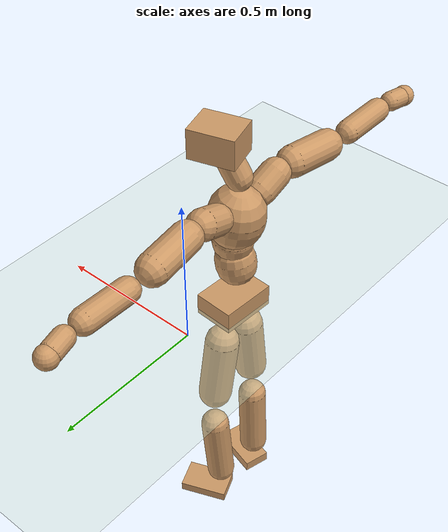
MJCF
<mujoco model="humanoid">
  <compiler coordinate="local" angle="radian"/>
  <default>
    <joint damping="0.0" armature="0.01" stiffness="0.0" limited="true"/>
    <geom conaffinity="1" condim="3" contype="7" margin="0.001" rgba="0.8 0.6 .4 1"/>
  </default>
  <asset>
    <texture type="skybox" builtin="gradient" rgb1=".4 .5 .6" rgb2="0 0 0" width="100" height="100"/>
    <texture builtin="flat" height="1278" mark="cross" markrgb="1 1 1" name="texgeom" random="0.01" rgb1="0.8 0.6 0.4" rgb2="0.8 0.6 0.4" type="cube" width="127"/>
    <texture builtin="checker" height="100" name="texplane" rgb1="0 0 0" rgb2="0.8 0.8 0.8" type="2d" width="100"/>
    <material name="MatPlane" reflectance="0.5" shininess="1" specular="1" texrepeat="60 60" texture="texplane"/>
    <material name="geom" texture="texgeom" texuniform="true"/>
  </asset>
  <worldbody>
    <light cutoff="100" diffuse="1 1 1" dir="-0 0 -1.3" directional="true" exponent="1" pos="0 0 1.3" specular=".1 .1 .1"/>
    <geom conaffinity="1" condim="3" name="floor" pos="0 0 0" rgba="0.8 0.9 0.8 1" size="100 100 .2" type="plane" material="MatPlane"/>
    <body name="Pelvis" pos="-0.0039 -0.2009 0.0273">
      <freejoint name="Pelvis"/>
      <geom type="box" contype="1" conaffinity="1" density="500" pos="-0.0115 0.0006 -0.0075" size="0.0682 0.0932 0.0385" quat="0.9996 0.0000 0.0000 -0.0267" name="Pelvis"/>
      <body name="L_Hip" pos="-0.018 0.0506 -0.0721">
        <joint name="L_Hip_x" type="hinge" pos="0 0 0" axis="1 0 0" stiffness="800" damping="80" armature="0.02" range="-180.0000 180.0000"/>
        <joint name="L_Hip_y" type="hinge" pos="0 0 0" axis="0 1 0" stiffness="800" damping="80" armature="0.02" range="-180.0000 180.0000"/>
        <joint name="L_Hip_z" type="hinge" pos="0 0 0" axis="0 0 1" stiffness="800" damping="80" armature="0.02" range="-180.0000 180.0000"/>
        <geom type="capsule" contype="1" conaffinity="1" density="500" fromto="0.0031 0.0098 -0.0768 0.0123 0.0393 -0.3072" size="0.0565" name="L_Hip"/>
        <body name="L_Knee" pos="0.0154 0.0491 -0.384">
          <joint name="L_Knee_x" type="hinge" pos="0 0 0" axis="1 0 0" stiffness="800" damping="80" armature="0.02" range="-180.0000 180.0000"/>
          <joint name="L_Knee_y" type="hinge" pos="0 0 0" axis="0 1 0" stiffness="800" damping="80" armature="0.02" range="-180.0000 180.0000"/>
          <joint name="L_Knee_z" type="hinge" pos="0 0 0" axis="0 0 1" stiffness="800" damping="80" armature="0.02" range="-180.0000 180.0000"/>
          <geom type="capsule" contype="1" conaffinity="1" density="500" fromto="-0.0059 -0.0023 -0.0831 -0.0237 -0.0093 -0.3323" size="0.0489" name="L_Knee"/>
          <body name="L_Ankle" pos="-0.0297 -0.0116 -0.4153">
            <joint name="L_Ankle_x" type="hinge" pos="0 0 0" axis="1 0 0" stiffness="800" damping="80" armature="0.02" range="-180.0000 180.0000"/>
            <joint name="L_Ankle_y" type="hinge" pos="0 0 0" axis="0 1 0" stiffness="800" damping="80" armature="0.02" range="-180.0000 180.0000"/>
            <joint name="L_Ankle_z" type="hinge" pos="0 0 0" axis="0 0 1" stiffness="800" damping="80" armature="0.02" range="-180.0000 180.0000"/>
            <geom type="box" contype="1" conaffinity="1" density="500" pos="0.0569 0.0234 -0.0291" size="0.0839 0.0521 0.018" quat="0.9811 0.0000 0.0000 0.1935" name="L_Ankle"/>
            <body name="L_Toe" pos="0.1139 0.0467 -0.0582">
              <joint name="L_Toe_x" type="hinge" pos="0 0 0" axis="1 0 0" stiffness="500" damping="50" armature="0.02" range="-180.0000 180.0000"/>
              <joint name="L_Toe_y" type="hinge" pos="0 0 0" axis="0 1 0" stiffness="500" damping="50" armature="0.02" range="-180.0000 180.0000"/>
              <joint name="L_Toe_z" type="hinge" pos="0 0 0" axis="0 0 1" stiffness="500" damping="50" armature="0.02" range="-180.0000 180.0000"/>
              <geom type="box" contype="1" conaffinity="1" density="500" pos="0.0000 0.0000 0.0296" size="0.001 0.0025 0.0009" quat="0.9802 0.0000 0.0000 0.1978" name="L_Toe"/>
            </body>
          </body>
        </body>
      </body>
      <body name="R_Hip" pos="-0.0151 -0.051 -0.0793">
        <joint name="R_Hip_x" type="hinge" pos="0 0 0" axis="1 0 0" stiffness="800" damping="80" armature="0.02" range="-180.0000 180.0000"/>
        <joint name="R_Hip_y" type="hinge" pos="0 0 0" axis="0 1 0" stiffness="800" damping="80" armature="0.02" range="-180.0000 180.0000"/>
        <joint name="R_Hip_z" type="hinge" pos="0 0 0" axis="0 0 1" stiffness="800" damping="80" armature="0.02" range="-180.0000 180.0000"/>
        <geom type="capsule" contype="1" conaffinity="1" density="500" fromto="0.0002 -0.0090 -0.0750 0.0009 -0.0360 -0.3000" size="0.0555" name="R_Hip"/>
        <body name="R_Knee" pos="0.0012 -0.045 -0.3751">
          <joint name="R_Knee_x" type="hinge" pos="0 0 0" axis="1 0 0" stiffness="800" damping="80" armature="0.02" range="-180.0000 180.0000"/>
          <joint name="R_Knee_y" type="hinge" pos="0 0 0" axis="0 1 0" stiffness="800" damping="80" armature="0.02" range="-180.0000 180.0000"/>
          <joint name="R_Knee_z" type="hinge" pos="0 0 0" axis="0 0 1" stiffness="800" damping="80" armature="0.02" range="-180.0000 180.0000"/>
          <geom type="capsule" contype="1" conaffinity="1" density="500" fromto="-0.0056 0.0033 -0.0811 -0.0225 0.0130 -0.3245" size="0.0495" name="R_Knee"/>
          <body name="R_Ankle" pos="-0.0281 0.0163 -0.4057">
            <joint name="R_Ankle_x" type="hinge" pos="0 0 0" axis="1 0 0" stiffness="800" damping="80" armature="0.02" range="-180.0000 180.0000"/>
            <joint name="R_Ankle_y" type="hinge" pos="0 0 0" axis="0 1 0" stiffness="800" damping="80" armature="0.02" range="-180.0000 180.0000"/>
            <joint name="R_Ankle_z" type="hinge" pos="0 0 0" axis="0 0 1" stiffness="800" damping="80" armature="0.02" range="-180.0000 180.0000"/>
            <geom type="box" contype="1" conaffinity="1" density="500" pos="0.0610 -0.0163 -0.0295" size="0.0865 0.0467 0.0197" quat="0.9915 0.0000 0.0000 -0.1301" name="R_Ankle"/>
            <body name="R_Toe" pos="0.122 -0.0326 -0.0591">
              <joint name="R_Toe_x" type="hinge" pos="0 0 0" axis="1 0 0" stiffness="500" damping="50" armature="0.02" range="-180.0000 180.0000"/>
              <joint name="R_Toe_y" type="hinge" pos="0 0 0" axis="0 1 0" stiffness="500" damping="50" armature="0.02" range="-180.0000 180.0000"/>
              <joint name="R_Toe_z" type="hinge" pos="0 0 0" axis="0 0 1" stiffness="500" damping="50" armature="0.02" range="-180.0000 180.0000"/>
              <geom type="box" contype="1" conaffinity="1" density="500" pos="0.0000 0.0000 0.0299" size="0.0009 0.0023 0.001" quat="0.9927 0.0000 0.0000 -0.1206" name="R_Toe"/>
            </body>
          </body>
        </body>
      </body>
      <body name="Torso" pos="-0.0357 0.0041 0.1065">
        <joint name="Torso_x" type="hinge" pos="0 0 0" axis="1 0 0" stiffness="1000" damping="100" armature="0.02" range="-180.0000 180.0000"/>
        <joint name="Torso_y" type="hinge" pos="0 0 0" axis="0 1 0" stiffness="1000" damping="100" armature="0.02" range="-180.0000 180.0000"/>
        <joint name="Torso_z" type="hinge" pos="0 0 0" axis="0 0 1" stiffness="1000" damping="100" armature="0.02" range="-180.0000 180.0000"/>
        <geom type="capsule" contype="1" conaffinity="1" density="500" fromto="0.0120 0.0020 0.0718 0.0080 0.0013 0.0479" size="0.0652" name="Torso"/>
        <body name="Spine" pos="0.0199 0.0033 0.1197">
          <joint name="Spine_x" type="hinge" pos="0 0 0" axis="1 0 0" stiffness="1000" damping="100" armature="0.02" range="-180.0000 180.0000"/>
          <joint name="Spine_y" type="hinge" pos="0 0 0" axis="0 1 0" stiffness="1000" damping="100" armature="0.02" range="-180.0000 180.0000"/>
          <joint name="Spine_z" type="hinge" pos="0 0 0" axis="0 0 1" stiffness="1000" damping="100" armature="0.02" range="-180.0000 180.0000"/>
          <geom type="capsule" contype="1" conaffinity="1" density="500" fromto="-0.0003 -0.0004 0.0289 -0.0002 -0.0003 0.0193" size="0.0657" name="Spine"/>
          <body name="Chest" pos="-0.0005 -0.0006 0.0482">
            <joint name="Chest_x" type="hinge" pos="0 0 0" axis="1 0 0" stiffness="1000" damping="100" armature="0.02" range="-180.0000 180.0000"/>
            <joint name="Chest_y" type="hinge" pos="0 0 0" axis="0 1 0" stiffness="1000" damping="100" armature="0.02" range="-180.0000 180.0000"/>
            <joint name="Chest_z" type="hinge" pos="0 0 0" axis="0 0 1" stiffness="1000" damping="100" armature="0.02" range="-180.0000 180.0000"/>
            <geom type="capsule" contype="1" conaffinity="1" density="500" fromto="-0.0111 -0.0045 0.0777 -0.0074 -0.0030 0.0518" size="0.0902" name="Chest"/>
            <body name="Neck" pos="-0.0224 -0.0122 0.1868">
              <joint name="Neck_x" type="hinge" pos="0 0 0" axis="1 0 0" stiffness="500" damping="50" armature="0.02" range="-180.0000 180.0000"/>
              <joint name="Neck_y" type="hinge" pos="0 0 0" axis="0 1 0" stiffness="500" damping="50" armature="0.02" range="-180.0000 180.0000"/>
              <joint name="Neck_z" type="hinge" pos="0 0 0" axis="0 0 1" stiffness="500" damping="50" armature="0.02" range="-180.0000 180.0000"/>
              <geom type="capsule" contype="1" conaffinity="1" density="500" fromto="0.0089 0.0024 0.0167 0.0358 0.0094 0.0669" size="0.0416" name="Neck"/>
              <body name="Head" pos="0.0447 0.0118 0.0837">
                <joint name="Head_x" type="hinge" pos="0 0 0" axis="1 0 0" stiffness="500" damping="50" armature="0.02" range="-180.0000 180.0000"/>
                <joint name="Head_y" type="hinge" pos="0 0 0" axis="0 1 0" stiffness="500" damping="50" armature="0.02" range="-180.0000 180.0000"/>
                <joint name="Head_z" type="hinge" pos="0 0 0" axis="0 0 1" stiffness="500" damping="50" armature="0.02" range="-180.0000 180.0000"/>
                <geom type="box" contype="1" conaffinity="1" density="500" pos="0.0234 0.0069 0.0428" size="0.0744 0.0585 0.0489" quat="0.9897 0.0000 0.0000 0.1428" name="Head"/>
              </body>
            </body>
            <body name="L_Thorax" pos="-0.0136 0.067 0.1021">
              <joint name="L_Thorax_x" type="hinge" pos="0 0 0" axis="1 0 0" stiffness="500" damping="50" armature="0.02" range="-180.0000 180.0000"/>
              <joint name="L_Thorax_y" type="hinge" pos="0 0 0" axis="0 1 0" stiffness="500" damping="50" armature="0.02" range="-180.0000 180.0000"/>
              <joint name="L_Thorax_z" type="hinge" pos="0 0 0" axis="0 0 1" stiffness="500" damping="50" armature="0.02" range="-180.0000 180.0000"/>
              <geom type="capsule" contype="1" conaffinity="1" density="500" fromto="-0.0028 0.0234 0.0095 -0.0111 0.0934 0.0379" size="0.0488" name="L_Thorax"/>
              <body name="L_Shoulder" pos="-0.0139 0.1168 0.0473">
                <joint name="L_Shoulder_x" type="hinge" pos="0 0 0" axis="1 0 0" stiffness="500" damping="50" armature="0.02" range="-720.0000 720.0000"/>
                <joint name="L_Shoulder_y" type="hinge" pos="0 0 0" axis="0 1 0" stiffness="500" damping="50" armature="0.02" range="-720.0000 720.0000"/>
                <joint name="L_Shoulder_z" type="hinge" pos="0 0 0" axis="0 0 1" stiffness="500" damping="50" armature="0.02" range="-720.0000 720.0000"/>
                <geom type="capsule" contype="1" conaffinity="1" density="500" fromto="-0.0046 0.0489 -0.0033 -0.0182 0.1956 -0.0132" size="0.0504" name="L_Shoulder"/>
                <body name="L_Elbow" pos="-0.0228 0.2445 -0.0165">
                  <joint name="L_Elbow_x" type="hinge" pos="0 0 0" axis="1 0 0" stiffness="500" damping="50" armature="0.02" range="-720.0000 720.0000"/>
                  <joint name="L_Elbow_y" type="hinge" pos="0 0 0" axis="0 1 0" stiffness="500" damping="50" armature="0.02" range="-720.0000 720.0000"/>
                  <joint name="L_Elbow_z" type="hinge" pos="0 0 0" axis="0 0 1" stiffness="500" damping="50" armature="0.02" range="-720.0000 720.0000"/>
                  <geom type="capsule" contype="1" conaffinity="1" density="500" fromto="-0.0015 0.0523 0.0027 -0.0059 0.2091 0.0106" size="0.0388" name="L_Elbow"/>
                  <body name="L_Wrist" pos="-0.0074 0.2614 0.0133">
                    <joint name="L_Wrist_x" type="hinge" pos="0 0 0" axis="1 0 0" stiffness="300" damping="30" armature="0.02" range="-180.0000 180.0000"/>
                    <joint name="L_Wrist_y" type="hinge" pos="0 0 0" axis="0 1 0" stiffness="300" damping="30" armature="0.02" range="-180.0000 180.0000"/>
                    <joint name="L_Wrist_z" type="hinge" pos="0 0 0" axis="0 0 1" stiffness="300" damping="30" armature="0.02" range="-180.0000 180.0000"/>
                    <geom type="capsule" contype="1" conaffinity="1" density="500" fromto="-0.0031 0.0169 -0.0021 -0.0123 0.0676 -0.0084" size="0.0325" name="L_Wrist"/>
                    <body name="L_Hand" pos="-0.0154 0.0846 -0.0105">
                      <joint name="L_Hand_x" type="hinge" pos="0 0 0" axis="1 0 0" stiffness="300" damping="30" armature="0.02" range="-180.0000 180.0000"/>
                      <joint name="L_Hand_y" type="hinge" pos="0 0 0" axis="0 1 0" stiffness="300" damping="30" armature="0.02" range="-180.0000 180.0000"/>
                      <joint name="L_Hand_z" type="hinge" pos="0 0 0" axis="0 0 1" stiffness="300" damping="30" armature="0.02" range="-180.0000 180.0000"/>
                      <geom type="sphere" contype="1" conaffinity="1" density="500" size="0.0344" pos="0.0000 0.0000 0.0000" name="L_Hand"/>
                    </body>
                  </body>
                </body>
              </body>
            </body>
            <body name="R_Thorax" pos="-0.0197 -0.0775 0.0998">
              <joint name="R_Thorax_x" type="hinge" pos="0 0 0" axis="1 0 0" stiffness="500" damping="50" armature="0.02" range="-180.0000 180.0000"/>
              <joint name="R_Thorax_y" type="hinge" pos="0 0 0" axis="0 1 0" stiffness="500" damping="50" armature="0.02" range="-180.0000 180.0000"/>
              <joint name="R_Thorax_z" type="hinge" pos="0 0 0" axis="0 0 1" stiffness="500" damping="50" armature="0.02" range="-180.0000 180.0000"/>
              <geom type="capsule" contype="1" conaffinity="1" density="500" fromto="-0.0012 -0.0214 0.0098 -0.0049 -0.0854 0.0391" size="0.0491" name="R_Thorax"/>
              <body name="R_Shoulder" pos="-0.0061 -0.1068 0.0489">
                <joint name="R_Shoulder_x" type="hinge" pos="0 0 0" axis="1 0 0" stiffness="500" damping="50" armature="0.02" range="-720.0000 720.0000"/>
                <joint name="R_Shoulder_y" type="hinge" pos="0 0 0" axis="0 1 0" stiffness="500" damping="50" armature="0.02" range="-720.0000 720.0000"/>
                <joint name="R_Shoulder_z" type="hinge" pos="0 0 0" axis="0 0 1" stiffness="500" damping="50" armature="0.02" range="-720.0000 720.0000"/>
                <geom type="capsule" contype="1" conaffinity="1" density="500" fromto="-0.0055 -0.0502 -0.0037 -0.0221 -0.2008 -0.0146" size="0.0511" name="R_Shoulder"/>
                <body name="R_Elbow" pos="-0.0276 -0.251 -0.0183">
                  <joint name="R_Elbow_x" type="hinge" pos="0 0 0" axis="1 0 0" stiffness="500" damping="50" armature="0.02" range="-720.0000 720.0000"/>
                  <joint name="R_Elbow_y" type="hinge" pos="0 0 0" axis="0 1 0" stiffness="500" damping="50" armature="0.02" range="-720.0000 720.0000"/>
                  <joint name="R_Elbow_z" type="hinge" pos="0 0 0" axis="0 0 1" stiffness="500" damping="50" armature="0.02" range="-720.0000 720.0000"/>
                  <geom type="capsule" contype="1" conaffinity="1" density="500" fromto="-0.0007 -0.0528 0.0015 -0.0029 -0.2110 0.0062" size="0.0389" name="R_Elbow"/>
                  <body name="R_Wrist" pos="-0.0037 -0.2638 0.0077">
                    <joint name="R_Wrist_x" type="hinge" pos="0 0 0" axis="1 0 0" stiffness="300" damping="30" armature="0.02" range="-180.0000 180.0000"/>
                    <joint name="R_Wrist_y" type="hinge" pos="0 0 0" axis="0 1 0" stiffness="300" damping="30" armature="0.02" range="-180.0000 180.0000"/>
                    <joint name="R_Wrist_z" type="hinge" pos="0 0 0" axis="0 0 1" stiffness="300" damping="30" armature="0.02" range="-180.0000 180.0000"/>
                    <geom type="capsule" contype="1" conaffinity="1" density="500" fromto="-0.0021 -0.0171 -0.0017 -0.0083 -0.0683 -0.0067" size="0.0326" name="R_Wrist"/>
                    <body name="R_Hand" pos="-0.0104 -0.0853 -0.0083">
                      <joint name="R_Hand_x" type="hinge" pos="0 0 0" axis="1 0 0" stiffness="300" damping="30" armature="0.02" range="-180.0000 180.0000"/>
                      <joint name="R_Hand_y" type="hinge" pos="0 0 0" axis="0 1 0" stiffness="300" damping="30" armature="0.02" range="-180.0000 180.0000"/>
                      <joint name="R_Hand_z" type="hinge" pos="0 0 0" axis="0 0 1" stiffness="300" damping="30" armature="0.02" range="-180.0000 180.0000"/>
                      <geom type="sphere" contype="1" conaffinity="1" density="500" size="0.0344" pos="0.0000 0.0000 0.0000" name="R_Hand"/>
                    </body>
                  </body>
                </body>
              </body>
            </body>
          </body>
        </body>
      </body>
    </body>
  </worldbody>
  <actuator>
    <motor name="L_Hip_x" joint="L_Hip_x" gear="500"/>
    <motor name="L_Hip_y" joint="L_Hip_y" gear="500"/>
    <motor name="L_Hip_z" joint="L_Hip_z" gear="500"/>
    <motor name="L_Knee_x" joint="L_Knee_x" gear="500"/>
    <motor name="L_Knee_y" joint="L_Knee_y" gear="500"/>
    <motor name="L_Knee_z" joint="L_Knee_z" gear="500"/>
    <motor name="L_Ankle_x" joint="L_Ankle_x" gear="500"/>
    <motor name="L_Ankle_y" joint="L_Ankle_y" gear="500"/>
    <motor name="L_Ankle_z" joint="L_Ankle_z" gear="500"/>
    <motor name="L_Toe_x" joint="L_Toe_x" gear="500"/>
    <motor name="L_Toe_y" joint="L_Toe_y" gear="500"/>
    <motor name="L_Toe_z" joint="L_Toe_z" gear="500"/>
    <motor name="R_Hip_x" joint="R_Hip_x" gear="500"/>
    <motor name="R_Hip_y" joint="R_Hip_y" gear="500"/>
    <motor name="R_Hip_z" joint="R_Hip_z" gear="500"/>
    <motor name="R_Knee_x" joint="R_Knee_x" gear="500"/>
    <motor name="R_Knee_y" joint="R_Knee_y" gear="500"/>
    <motor name="R_Knee_z" joint="R_Knee_z" gear="500"/>
    <motor name="R_Ankle_x" joint="R_Ankle_x" gear="500"/>
    <motor name="R_Ankle_y" joint="R_Ankle_y" gear="500"/>
    <motor name="R_Ankle_z" joint="R_Ankle_z" gear="500"/>
    <motor name="R_Toe_x" joint="R_Toe_x" gear="500"/>
    <motor name="R_Toe_y" joint="R_Toe_y" gear="500"/>
    <motor name="R_Toe_z" joint="R_Toe_z" gear="500"/>
    <motor name="Torso_x" joint="Torso_x" gear="500"/>
    <motor name="Torso_y" joint="Torso_y" gear="500"/>
    <motor name="Torso_z" joint="Torso_z" gear="500"/>
    <motor name="Spine_x" joint="Spine_x" gear="500"/>
    <motor name="Spine_y" joint="Spine_y" gear="500"/>
    <motor name="Spine_z" joint="Spine_z" gear="500"/>
    <motor name="Chest_x" joint="Chest_x" gear="500"/>
    <motor name="Chest_y" joint="Chest_y" gear="500"/>
    <motor name="Chest_z" joint="Chest_z" gear="500"/>
    <motor name="Neck_x" joint="Neck_x" gear="500"/>
    <motor name="Neck_y" joint="Neck_y" gear="500"/>
    <motor name="Neck_z" joint="Neck_z" gear="500"/>
    <motor name="Head_x" joint="Head_x" gear="500"/>
    <motor name="Head_y" joint="Head_y" gear="500"/>
    <motor name="Head_z" joint="Head_z" gear="500"/>
    <motor name="L_Thorax_x" joint="L_Thorax_x" gear="500"/>
    <motor name="L_Thorax_y" joint="L_Thorax_y" gear="500"/>
    <motor name="L_Thorax_z" joint="L_Thorax_z" gear="500"/>
    <motor name="L_Shoulder_x" joint="L_Shoulder_x" gear="500"/>
    <motor name="L_Shoulder_y" joint="L_Shoulder_y" gear="500"/>
    <motor name="L_Shoulder_z" joint="L_Shoulder_z" gear="500"/>
    <motor name="L_Elbow_x" joint="L_Elbow_x" gear="500"/>
    <motor name="L_Elbow_y" joint="L_Elbow_y" gear="500"/>
    <motor name="L_Elbow_z" joint="L_Elbow_z" gear="500"/>
    <motor name="L_Wrist_x" joint="L_Wrist_x" gear="500"/>
    <motor name="L_Wrist_y" joint="L_Wrist_y" gear="500"/>
    <motor name="L_Wrist_z" joint="L_Wrist_z" gear="500"/>
    <motor name="L_Hand_x" joint="L_Hand_x" gear="500"/>
    <motor name="L_Hand_y" joint="L_Hand_y" gear="500"/>
    <motor name="L_Hand_z" joint="L_Hand_z" gear="500"/>
    <motor name="R_Thorax_x" joint="R_Thorax_x" gear="500"/>
    <motor name="R_Thorax_y" joint="R_Thorax_y" gear="500"/>
    <motor name="R_Thorax_z" joint="R_Thorax_z" gear="500"/>
    <motor name="R_Shoulder_x" joint="R_Shoulder_x" gear="500"/>
    <motor name="R_Shoulder_y" joint="R_Shoulder_y" gear="500"/>
    <motor name="R_Shoulder_z" joint="R_Shoulder_z" gear="500"/>
    <motor name="R_Elbow_x" joint="R_Elbow_x" gear="500"/>
    <motor name="R_Elbow_y" joint="R_Elbow_y" gear="500"/>
    <motor name="R_Elbow_z" joint="R_Elbow_z" gear="500"/>
    <motor name="R_Wrist_x" joint="R_Wrist_x" gear="500"/>
    <motor name="R_Wrist_y" joint="R_Wrist_y" gear="500"/>
    <motor name="R_Wrist_z" joint="R_Wrist_z" gear="500"/>
    <motor name="R_Hand_x" joint="R_Hand_x" gear="500"/>
    <motor name="R_Hand_y" joint="R_Hand_y" gear="500"/>
    <motor name="R_Hand_z" joint="R_Hand_z" gear="500"/>
  </actuator>
  <contact>
    <exclude body1="Torso" body2="Chest"/>
    <exclude body1="Head" body2="Chest"/>
    <exclude body1="R_Knee" body2="R_Toe"/>
    <exclude body1="R_Knee" body2="L_Ankle"/>
    <exclude body1="R_Knee" body2="L_Toe"/>
    <exclude body1="L_Knee" body2="L_Toe"/>
    <exclude body1="L_Knee" body2="R_Ankle"/>
    <exclude body1="L_Knee" body2="R_Toe"/>
    <exclude body1="L_Shoulder" body2="Chest"/>
    <exclude body1="R_Shoulder" body2="Chest"/>
  </contact>
  <sensor/>
  <size njmax="700" nconmax="700"/>
</mujoco>
